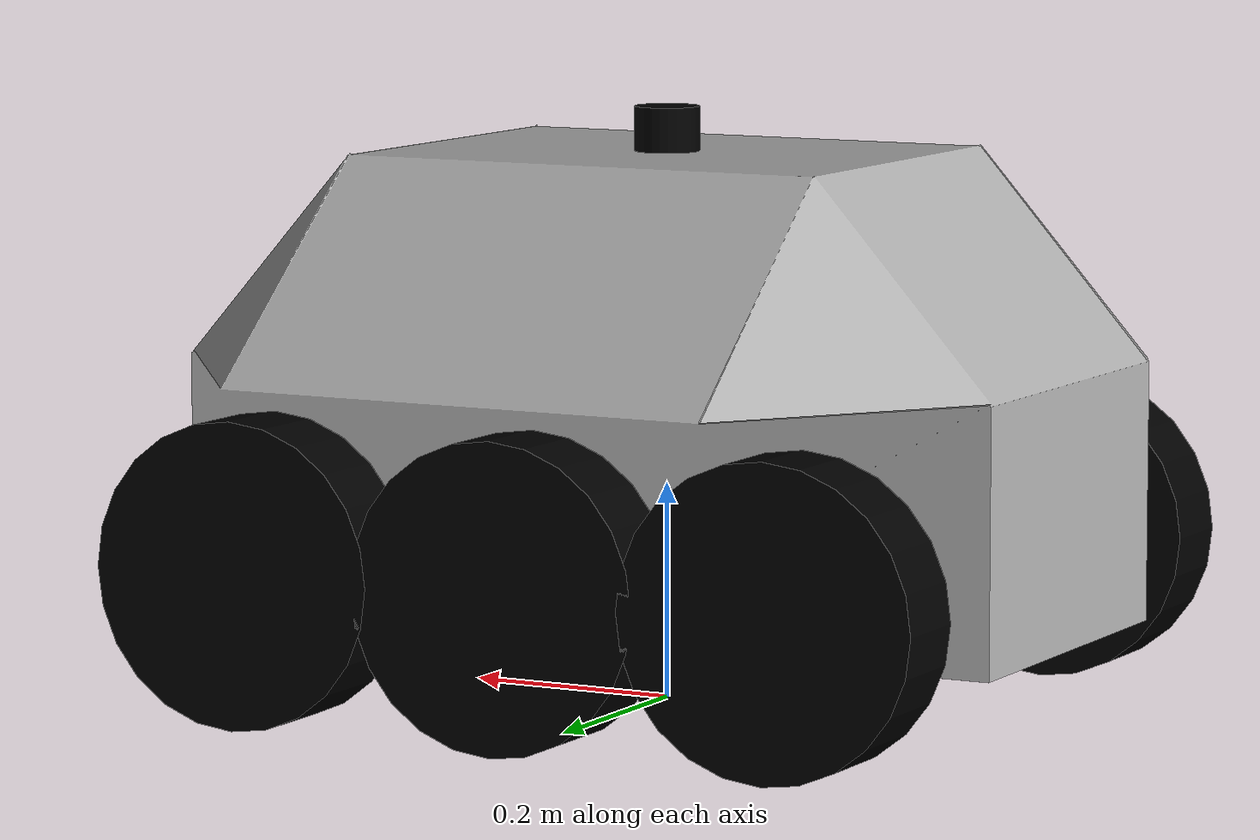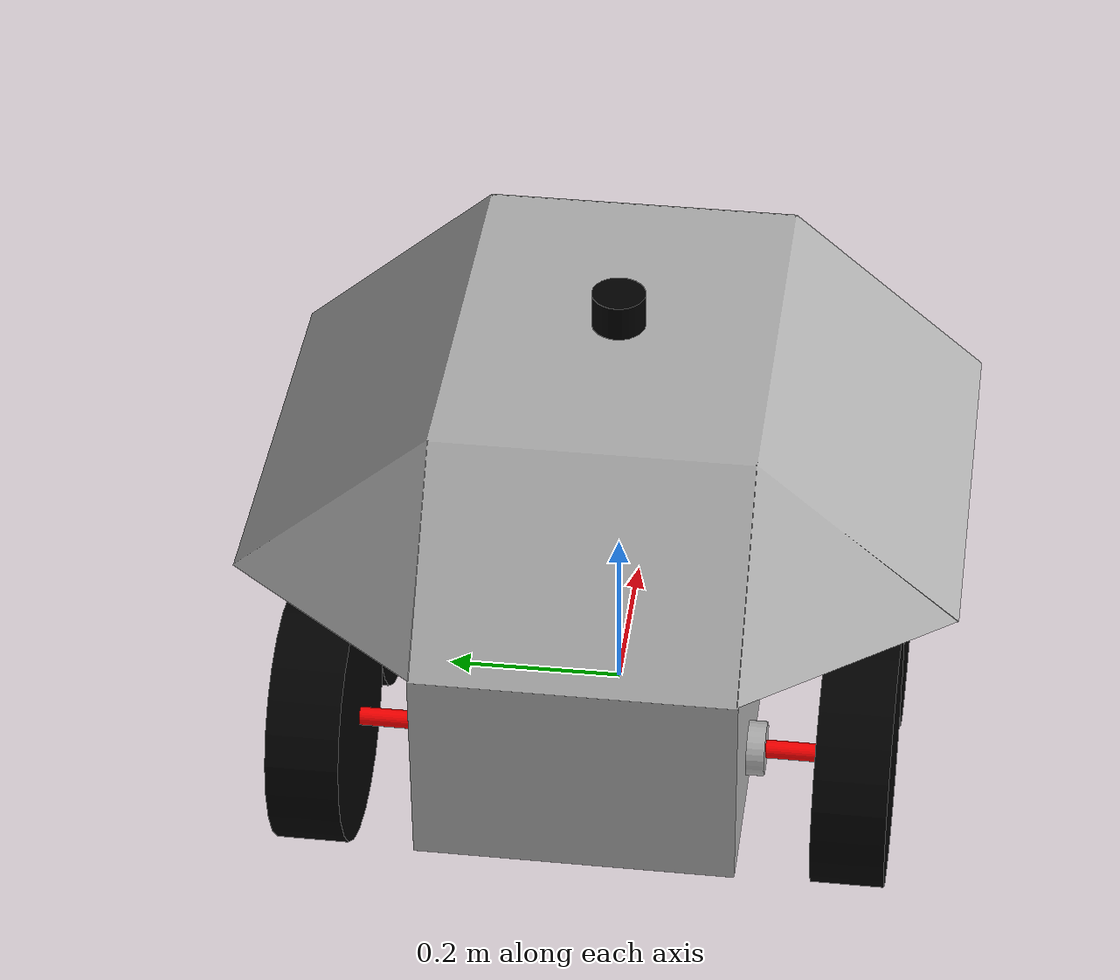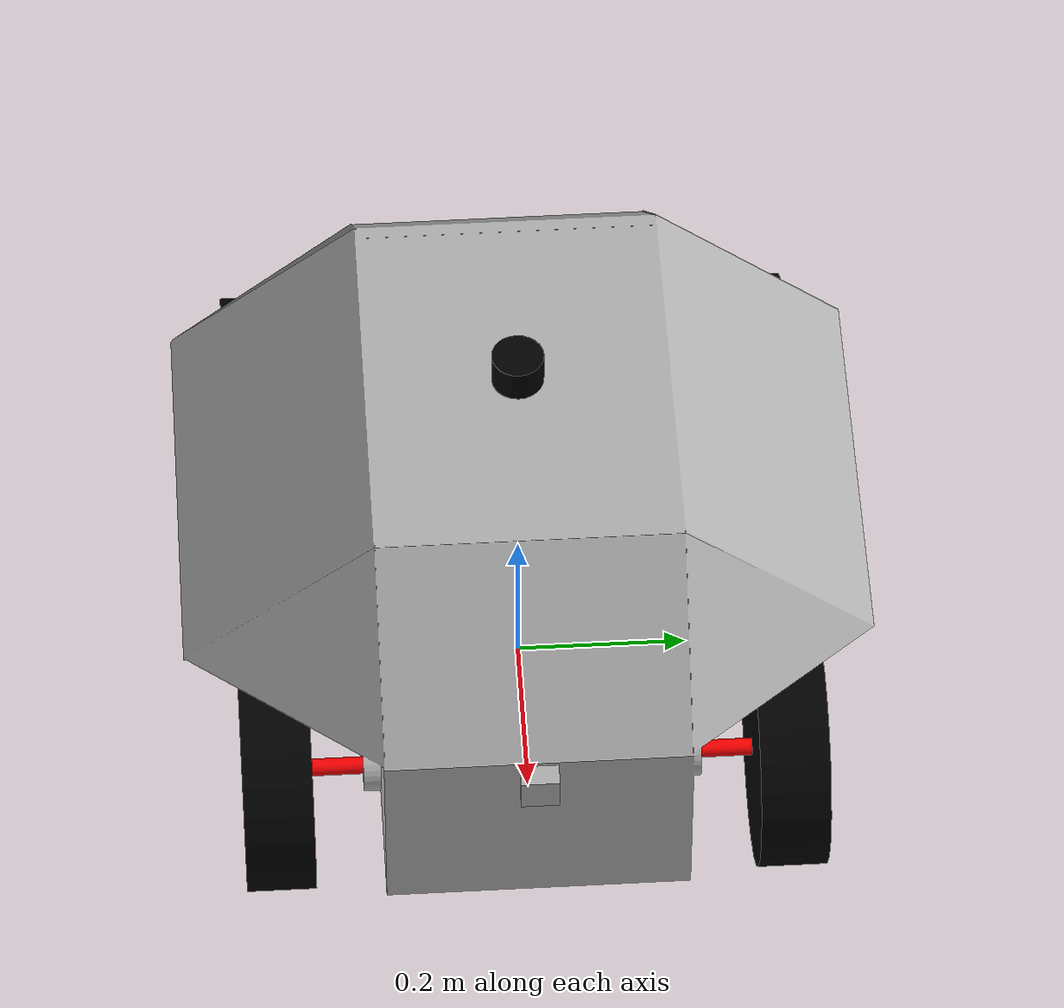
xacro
<?xml version="1.0" ?>
<robot name="tank_urdf" xmlns:xacro="http://www.ros.org/wiki/xacro">
  <xacro:property name="tank_description_share"
                  value="$(find tank_description)"/>

  <xacro:include filename="${tank_description_share}/urdf/common_properties.xacro"/>
  <xacro:include filename="${tank_description_share}/urdf/tank_urdf.gazebo"/>
  <xacro:include filename="${tank_description_share}/urdf/sensors.xacro"/>
  <xacro:include filename="${tank_description_share}/urdf/tank_gz.ros2_control.xacro"/>

  <xacro:property name="wheel_mass" value="5"/>
  <xacro:property name="wheel_radius" value="0.14"/>
  <xacro:property name="wheel_length" value="0.08"/>

  <xacro:property name="base_mass" value="23"/>
  <xacro:property name="base_length" value="0.810"/>
  <xacro:property name="base_width" value="0.350"/>
  <xacro:property name="base_height" value="0.430"/>

  <xacro:property name="bar_mass" value="0.2"/>
  <xacro:property name="bar_radius" value="0.01"/>
  <xacro:property name="bar_length" value="0.1"/>

<link name="base_footprint"/>

<joint name="base_footprint_joint" type="fixed">
  <parent link="base_footprint"/>
  <child link="base_link"/>
  <origin xyz="0 0 0.292289" rpy="0 0 0"/>
</joint>

<link name="base_link">
  <visual>
    <origin xyz="0 -0.175 0" rpy="0 0 0"/>
    <geometry>
      <mesh filename="package://tank_description/meshes/base_link.stl" scale="0.001 0.001 0.001"/>
    </geometry>
    <material name="silver"/>
  </visual>
  <collision>
    <origin xyz="0 -0.175 0" rpy="0 0 0"/>
    <geometry>
      <mesh filename="package://tank_description/meshes/base_link.stl" scale="0.001 0.001 0.001"/>
    </geometry>
  </collision>
  <xacro:box_inertia m="${base_mass}" x="${base_length}" y="${base_width}" z="${base_height}" o_xyz="-0.000339224274209803 0.000414518587673 0.0023010948198566436" o_rpy="0 0 0"/>
</link>

<xacro:bar_link prefix="right_front" visual_xyz="0 ${bar_length/2} 0" visual_rpy="${pi/2} 0 0"/>
<xacro:bar_link prefix="right_middle" visual_xyz="0 ${bar_length/2} 0" visual_rpy="${pi/2} 0 0"/>
<xacro:bar_link prefix="right_back" visual_xyz="0 ${bar_length/2} 0" visual_rpy="${pi/2} 0 0"/>
<xacro:bar_link prefix="left_front" visual_xyz="0 -${bar_length/2} 0" visual_rpy="${pi/2} 0 0"/>
<xacro:bar_link prefix="left_middle" visual_xyz="0 -${bar_length/2} 0" visual_rpy="${pi/2} 0 0"/>
<xacro:bar_link prefix="left_back" visual_xyz="0 -${bar_length/2} 0" visual_rpy="${pi/2} 0 0"/>

<xacro:wheel_link prefix="right_front" visual_xyz="0 0 0" visual_rpy="${pi/2} 0 0"/>
<xacro:wheel_link prefix="right_middle" visual_xyz="0 0 0" visual_rpy="${pi/2} 0 0"/>
<xacro:wheel_link prefix="right_back" visual_xyz="0 0 0" visual_rpy="${pi/2} 0 0"/>
<xacro:wheel_link prefix="left_front" visual_xyz="0 0 0" visual_rpy="${pi/2} 0 0"/>
<xacro:wheel_link prefix="left_middle" visual_xyz="0 0 0" visual_rpy="${pi/2} 0 0"/>
<xacro:wheel_link prefix="left_back" visual_xyz="0 0 0" visual_rpy="${pi/2} 0 0"/>

<xacro:bar_joint link_name="right_front_bar_link" joint_name="right_front_bar_joint"  o_xyz="0.265 0.195 -0.151226" o_rpy="0 0 0"/>
<xacro:bar_joint link_name="right_middle_bar_link" joint_name="right_middle_bar_joint"  o_xyz="0.0 0.195 -0.151226" o_rpy="0 0 0"/>
<xacro:bar_joint link_name="right_back_bar_link" joint_name="right_back_bar_joint"  o_xyz="-0.265 0.195 -0.151226" o_rpy="0 0 0"/>
<xacro:bar_joint link_name="left_front_bar_link" joint_name="left_front_bar_joint"  o_xyz="0.265 -0.195 -0.151226" o_rpy="0 0 0"/>
<xacro:bar_joint link_name="left_middle_bar_link" joint_name="left_middle_bar_joint"  o_xyz="0.0 -0.195 -0.151226" o_rpy="0 0 0"/>
<xacro:bar_joint link_name="left_back_bar_link" joint_name="left_back_bar_joint"  o_xyz="-0.265 -0.195 -0.151226" o_rpy="0 0 0"/>

<xacro:wheel_fixed_joint link_name="right_front_wheel_link" joint_name="right_front_wheel_joint"  o_xyz="0.265 ${0.195 + bar_length} -0.151226" o_rpy="0 0 0"/>
<xacro:wheel_fixed_joint link_name="right_middle_wheel_link" joint_name="right_middle_wheel_joint"  o_xyz="0.0 ${0.195 + bar_length} -0.151226" o_rpy="0 0 0"/>
<xacro:wheel_continuous_joint link_name="right_back_wheel_link" joint_name="right_back_wheel_joint"  o_xyz="-0.265 ${0.195 + bar_length} -0.151226" o_rpy="0 0 0"/>
<xacro:wheel_fixed_joint link_name="left_front_wheel_link" joint_name="left_front_wheel_joint"  o_xyz="0.265 -${0.195 + bar_length} -0.151226" o_rpy="0 0 0"/>
<xacro:wheel_fixed_joint link_name="left_middle_wheel_link" joint_name="left_middle_wheel_joint"  o_xyz="0.0 -${0.195 + bar_length} -0.151226" o_rpy="0 0 0"/>
<xacro:wheel_continuous_joint link_name="left_back_wheel_link" joint_name="left_back_wheel_joint"  o_xyz="-0.265 -${0.195 + bar_length} -0.151226" o_rpy="0 0 0"/>

</robot>

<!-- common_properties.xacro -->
<robot xmlns:xacro="http://www.ros.org/wiki/xacro" >

<material name="silver">
  <color rgba="0.700 0.700 0.700 1.000"/>
</material>

<material name="red">
  <color rgba="1.000 0.000 0.000 1.000"/>
</material>

<material name="green">
  <color rgba="0.000 1.000 0.000 1.000"/>
</material>

<material name="blue">
  <color rgba="0.000 0.000 1.000 1.000"/>
</material>

<material name="white">
  <color rgba="1.000 1.000 1.000 1.000"/>
</material>

<material name="black">
  <color rgba="0.000 0.000 0.000 1.000"/>
</material>

<xacro:macro name="box_inertia" params="m x y z o_xyz o_rpy">
    <inertial>
        <origin xyz="${o_xyz}" rpy="${o_rpy}"/>
        <mass value="${m}"/>
        <inertia ixx="${(m/12)*(y**2 + z**2)}" ixy="0"                       ixz="0"
                                               iyy="${(m/12)*(x**2 + z**2)}" iyz="0"
                                                                             izz="${(m/12)*(y**2 + x**2)}"/>
    </inertial>
</xacro:macro>

<xacro:macro name="cylinder_inertia" params="m radius length o_xyz o_rpy">
    <inertial>
        <origin xyz="${o_xyz}" rpy="${o_rpy}"/>
        <mass value="${m}"/>
        <inertia ixx="${(m/12)*(3*(radius**2) + length**2)}"                ixy="0"                                                  ixz="0"
                                                                            iyy="${(m/12)*(3*(radius**2) + length**2)}"              iyz="0"
                                                                                                                                     izz="${(m/2)*(radius**2)}"/>
    </inertial>
</xacro:macro>

<xacro:macro name="sphere_inertia" params="m radius o_xyz o_rpy">
    <inertial>
        <origin xyz="${o_xyz}" rpy="${o_rpy}"/>
        <mass value="${m}"/>
        <inertia ixx="${2*(m/5)*(radius**2)}"                ixy="0"                             ixz="0"
                                                             iyy="${2*(m/5)*(radius**2)}"        iyz="0"
                                                                                                 izz="${2*(m/5)*(radius**2)}"/>
    </inertial>
</xacro:macro>

<xacro:macro name="wheel_link" params="prefix visual_xyz visual_rpy">
<link name="${prefix}_wheel_link">
  <visual>
    <origin xyz="${visual_xyz}" rpy="${visual_rpy}"/>
    <geometry>
      <cylinder radius="${wheel_radius}" length="${wheel_length}"/>
    </geometry>
    <material name="black"/>
  </visual>
  <collision>
    <origin xyz="${visual_xyz}" rpy="${visual_rpy}"/>
    <geometry>
      <cylinder radius="${wheel_radius}" length="${wheel_length}"/>
    </geometry>
  </collision>
  <xacro:sphere_inertia m="${wheel_mass}" radius="${wheel_radius}" o_xyz="${visual_xyz}" o_rpy="${visual_rpy}" />
</link>
</xacro:macro>

<xacro:macro name="bar_link" params="prefix visual_xyz visual_rpy">
<link name="${prefix}_bar_link">
  <visual>
    <origin xyz="${visual_xyz}" rpy="${visual_rpy}"/>
    <geometry>
      <cylinder radius="${bar_radius}" length="${bar_length}"/>
    </geometry>
    <material name="red"/>
  </visual>
  <collision>
    <origin xyz="${visual_xyz}" rpy="${visual_rpy}"/>
    <geometry>
      <cylinder radius="${bar_radius}" length="${bar_length}"/>
    </geometry>
  </collision>
  <xacro:cylinder_inertia m="${bar_mass}" radius="${bar_radius}" length="${bar_length}" o_xyz="${visual_xyz}" o_rpy="${visual_rpy}" />
</link>
</xacro:macro>

<xacro:macro name="wheel_continuous_joint" params="link_name joint_name o_xyz o_rpy">
<joint name="${joint_name}" type="continuous">
  <origin xyz="${o_xyz}" rpy="${o_rpy}"/>
  <parent link="base_link"/>
  <child link="${link_name}"/>
  <axis xyz="0.0 1.0 0.0"/>
</joint>
</xacro:macro>

<xacro:macro name="wheel_fixed_joint" params="link_name joint_name o_xyz o_rpy">
<joint name="${joint_name}" type="fixed">
  <origin xyz="${o_xyz}" rpy="${o_rpy}"/>
  <parent link="base_link"/>
  <child link="${link_name}"/>
</joint>
</xacro:macro>

<xacro:macro name="bar_joint" params="link_name joint_name o_xyz o_rpy">
<joint name="${joint_name}" type="fixed">
  <origin xyz="${o_xyz}" rpy="${o_rpy}"/>
  <parent link="base_link"/>
  <child link="${link_name}"/>
</joint>
</xacro:macro>

</robot>

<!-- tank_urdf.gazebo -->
<robot xmlns:xacro="http://www.ros.org/wiki/xacro" >

<xacro:property name="body_color" value="Gazebo/Silver" />

<gazebo reference="right_front_wheel_link">
  <material>${body_color}</material>
  <mu1>0.0.5</mu1>
  <mu2>0.0.5</mu2>
  <selfCollide>true</selfCollide>
</gazebo>

<gazebo reference="right_middle_wheel_link">
  <material>${body_color}</material>
  <mu1>0.0.5</mu1>
  <mu2>0.0.5</mu2>
  <selfCollide>true</selfCollide>
</gazebo>

<gazebo reference="left_front_wheel_link">
  <material>${body_color}</material>
  <mu1>0.0.5</mu1>
  <mu2>0.0.5</mu2>
  <selfCollide>true</selfCollide>
</gazebo>

<gazebo reference="left_middle_wheel_link">
  <material>${body_color}</material>
  <mu1>0.0.5</mu1>
  <mu2>0.0.5</mu2>
  <selfCollide>true</selfCollide>
</gazebo>

</robot>

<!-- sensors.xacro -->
<robot xmlns:xacro="http://www.ros.org/wiki/xacro" >

<xacro:property name="camera_length" value="0.0415"/>
<xacro:property name="camera_width" value="0.044"/>
<xacro:property name="camera_height" value="0.041"/>

<xacro:property name="gps_length" value="0.035"/>
<xacro:property name="gps_width" value="0.025"/>
<xacro:property name="gps_height" value="0.002"/>

<xacro:property name="imu_length" value="0.02"/>
<xacro:property name="imu_width" value="0.015"/>
<xacro:property name="imu_height" value="0.002"/>

<xacro:property name="lidar_length" value="0.041"/>
<xacro:property name="lidar_radius" value="0.03"/>

<link name="camera_link">
<visual>
 <origin xyz="0 0 0" rpy="0 0 0"/>
    <geometry>
        <box size="${camera_length} ${camera_width} ${camera_height}"/>
    </geometry>
    <material name="silver"/>
</visual>
  <collision>
    <origin xyz="0 0 0" rpy="0 0 0"/>
    <geometry>
        <box size="${camera_length} ${camera_width} ${camera_height}"/>
    </geometry>
  </collision>
  <xacro:box_inertia m="0.2" x="${camera_length}" y="${camera_width}" z="${camera_height}" o_xyz="0 0 0" o_rpy="0 0 0"/>
</link>

<link name="camera_optical_link"/>

<link name="gps_link">
<visual>
 <origin xyz="0 0 0" rpy="0 0 0"/>
    <geometry>
        <box size="${gps_length} ${gps_width} ${gps_height}"/>
    </geometry>
    <material name="blue"/>
</visual>
  <collision>
    <origin xyz="0 0 0" rpy="0 0 0"/>
    <geometry>
        <box size="${gps_length} ${gps_width} ${gps_height}"/>
    </geometry>
  </collision>
    <xacro:box_inertia m="0.01" x="${gps_length}" y="${gps_width}" z="${gps_height}" o_xyz="0 0 0" o_rpy="0 0 0"/>
</link>

<link name="imu_link">
<visual>
 <origin xyz="0 0 0" rpy="0 0 0"/>
    <geometry>
         <box size="${imu_length} ${imu_width} ${imu_height}"/>
    </geometry>
    <material name="blue"/>
</visual>
  <collision>
    <origin xyz="0 0 0" rpy="0 0 0"/>
    <geometry>
         <box size="${imu_length} ${imu_width} ${imu_height}"/>
    </geometry>
  </collision>
    <xacro:box_inertia m="0.01" x="${imu_length}" y="${imu_width}" z="${imu_height}" o_xyz="0 0 0" o_rpy="0 0 0"/>
</link>

<link name="lidar_link">
<visual>
 <origin xyz="0 0 0" rpy="0 0 0"/>
    <geometry>
     <cylinder length="0.041" radius="0.03"/>
    </geometry>
    <material name="black"/>
</visual>
  <collision>
    <origin xyz="0 0 0" rpy="0 0 0"/>
    <geometry>
     <cylinder length="0.041" radius="0.03"/>
    </geometry>
  </collision>
    <xacro:cylinder_inertia m="0.1" radius="${lidar_radius}" length="${lidar_length}" o_xyz="0 0 0" o_rpy="0 0 0"/>
</link>

<joint name="camera_joint" type="fixed">
  <origin xyz="0.41 0.0 0.00" rpy="0 0 0"/>
  <parent link="base_link"/>
  <child link="camera_link"/>
</joint>

<joint name="camera_optical_joint" type="fixed">
  <origin xyz="0.0 0.0 0.0" rpy="${-pi/2} 0 ${-pi/2}"/>
  <parent link="camera_link"/>
  <child link="camera_optical_link"/>
</joint>

<joint name="gps_joint" type="fixed">
  <origin xyz="0.356 0.05 -0.06" rpy="0 0 0"/>
  <parent link="base_link"/>
  <child link="gps_link"/>
</joint>

<joint name="imu_joint" type="fixed">
  <origin xyz="0.356 0.0 -0.06" rpy="0 0 0"/>
  <parent link="base_link"/>
  <child link="imu_link"/>
</joint>

<joint name="lidar_joint" type="fixed">
  <origin xyz="0.0 0.0 0.2355" rpy="0 0 0"/>
  <parent link="base_link"/>
  <child link="lidar_link"/>
</joint>

</robot>
